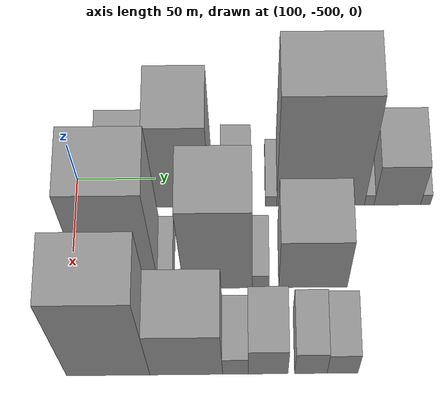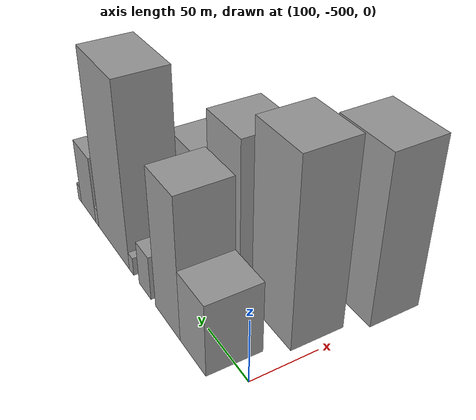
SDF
<sdf version="1.6">
 <world name="default">
  <model name="building_15">
   <static>1</static>
   <pose>100.0000 -466.7707 0 0.000000 0.000000 0.000000</pose>
   <link name="link">
    <pose>0 0 28.50 0 0 0</pose>
    <collision name="collision"><geometry><box><size>40.0000 33.6576 57.0000</size></box></geometry></collision>
    <visual name="visual">
     <cast_shadows>0</cast_shadows>
     <geometry><box><size>40.0000 33.6576 57.0000</size></box></geometry>
     <material>
      <script>
       <uri>model://grey_wall/materials/scripts</uri>
       <uri>model://grey_wall/materials/textures</uri>
       <name>vrc/grey_wall</name>
      </script>
     </material>
    </visual>
   </link>
  </model>
  <model name="building_16">
   <static>1</static>
   <pose>100.0000 -432.0576 0 0.000000 0.000000 0.000000</pose>
   <link name="link">
    <pose>0 0 55.50 0 0 0</pose>
    <collision name="collision"><geometry><box><size>40.0000 35.7686 111.0000</size></box></geometry></collision>
    <visual name="visual">
     <cast_shadows>0</cast_shadows>
     <geometry><box><size>40.0000 35.7686 111.0000</size></box></geometry>
     <material>
      <script>
       <uri>model://grey_wall/materials/scripts</uri>
       <uri>model://grey_wall/materials/textures</uri>
       <name>vrc/grey_wall</name>
      </script>
     </material>
    </visual>
   </link>
  </model>
  <model name="building_17">
   <static>1</static>
   <pose>100.0000 -397.7357 0 0.000000 0.000000 0.000000</pose>
   <link name="link">
    <pose>0 0 18.00 0 0 0</pose>
    <collision name="collision"><geometry><box><size>40.0000 18.8753 36.0000</size></box></geometry></collision>
    <visual name="visual">
     <cast_shadows>0</cast_shadows>
     <geometry><box><size>40.0000 18.8753 36.0000</size></box></geometry>
     <material>
      <script>
       <uri>model://grey_wall/materials/scripts</uri>
       <uri>model://grey_wall/materials/textures</uri>
       <name>vrc/grey_wall</name>
      </script>
     </material>
    </visual>
   </link>
  </model>
  <model name="building_18">
   <static>1</static>
   <pose>100.0000 -375.6506 0 0.000000 0.000000 0.000000</pose>
   <link name="link">
    <pose>0 0 7.50 0 0 0</pose>
    <collision name="collision"><geometry><box><size>40.0000 7.2949 15.0000</size></box></geometry></collision>
    <visual name="visual">
     <cast_shadows>0</cast_shadows>
     <geometry><box><size>40.0000 7.2949 15.0000</size></box></geometry>
     <material>
      <script>
       <uri>model://grey_wall/materials/scripts</uri>
       <uri>model://grey_wall/materials/textures</uri>
       <name>vrc/grey_wall</name>
      </script>
     </material>
    </visual>
   </link>
  </model>
  <model name="building_19">
   <static>1</static>
   <pose>100.0000 -344.0484 0 0.000000 0.000000 0.000000</pose>
   <link name="link">
    <pose>0 0 73.50 0 0 0</pose>
    <collision name="collision"><geometry><box><size>40.0000 55.9094 147.0000</size></box></geometry></collision>
    <visual name="visual">
     <cast_shadows>0</cast_shadows>
     <geometry><box><size>40.0000 55.9094 147.0000</size></box></geometry>
     <material>
      <script>
       <uri>model://grey_wall/materials/scripts</uri>
       <uri>model://grey_wall/materials/textures</uri>
       <name>vrc/grey_wall</name>
      </script>
     </material>
    </visual>
   </link>
  </model>
  <model name="building_20">
   <static>1</static>
   <pose>100.0000 -313.0314 0 0.000000 0.000000 0.000000</pose>
   <link name="link">
    <pose>0 0 7.50 0 0 0</pose>
    <collision name="collision"><geometry><box><size>40.0000 6.1247 15.0000</size></box></geometry></collision>
    <visual name="visual">
     <cast_shadows>0</cast_shadows>
     <geometry><box><size>40.0000 6.1247 15.0000</size></box></geometry>
     <material>
      <script>
       <uri>model://grey_wall/materials/scripts</uri>
       <uri>model://grey_wall/materials/textures</uri>
       <name>vrc/grey_wall</name>
      </script>
     </material>
    </visual>
   </link>
  </model>
  <model name="building_21">
   <static>1</static>
   <pose>100.0000 -295.0973 0 0.000000 0.000000 0.000000</pose>
   <link name="link">
    <pose>0 0 28.50 0 0 0</pose>
    <collision name="collision"><geometry><box><size>40.0000 29.7436 57.0000</size></box></geometry></collision>
    <visual name="visual">
     <cast_shadows>0</cast_shadows>
     <geometry><box><size>40.0000 29.7436 57.0000</size></box></geometry>
     <material>
      <script>
       <uri>model://grey_wall/materials/scripts</uri>
       <uri>model://grey_wall/materials/textures</uri>
       <name>vrc/grey_wall</name>
      </script>
     </material>
    </visual>
   </link>
  </model>
  <model name="building_22">
   <static>1</static>
   <pose>100.0000 -277.1686 0 0.000000 0.000000 0.000000</pose>
   <link name="link">
    <pose>0 0 7.50 0 0 0</pose>
    <collision name="collision"><geometry><box><size>40.0000 6.1137 15.0000</size></box></geometry></collision>
    <visual name="visual">
     <cast_shadows>0</cast_shadows>
     <geometry><box><size>40.0000 6.1137 15.0000</size></box></geometry>
     <material>
      <script>
       <uri>model://grey_wall/materials/scripts</uri>
       <uri>model://grey_wall/materials/textures</uri>
       <name>vrc/grey_wall</name>
      </script>
     </material>
    </visual>
   </link>
  </model>
  <model name="building_67">
   <static>1</static>
   <pose>155.0000 -468.7932 0 0.000000 0.000000 0.000000</pose>
   <link name="link">
    <pose>0 0 72.00 0 0 0</pose>
    <collision name="collision"><geometry><box><size>40.0000 46.3255 144.0000</size></box></geometry></collision>
    <visual name="visual">
     <cast_shadows>0</cast_shadows>
     <geometry><box><size>40.0000 46.3255 144.0000</size></box></geometry>
     <material>
      <script>
       <uri>model://grey_wall/materials/scripts</uri>
       <uri>model://grey_wall/materials/textures</uri>
       <name>vrc/grey_wall</name>
      </script>
     </material>
    </visual>
   </link>
  </model>
  <model name="building_68">
   <static>1</static>
   <pose>155.0000 -441.0066 0 0.000000 0.000000 0.000000</pose>
   <link name="link">
    <pose>0 0 10.50 0 0 0</pose>
    <collision name="collision"><geometry><box><size>40.0000 9.2479 21.0000</size></box></geometry></collision>
    <visual name="visual">
     <cast_shadows>0</cast_shadows>
     <geometry><box><size>40.0000 9.2479 21.0000</size></box></geometry>
     <material>
      <script>
       <uri>model://grey_wall/materials/scripts</uri>
       <uri>model://grey_wall/materials/textures</uri>
       <name>vrc/grey_wall</name>
      </script>
     </material>
    </visual>
   </link>
  </model>
  <model name="building_69">
   <static>1</static>
   <pose>155.0000 -409.1685 0 0.000000 0.000000 0.000000</pose>
   <link name="link">
    <pose>0 0 60.00 0 0 0</pose>
    <collision name="collision"><geometry><box><size>40.0000 42.4283 120.0000</size></box></geometry></collision>
    <visual name="visual">
     <cast_shadows>0</cast_shadows>
     <geometry><box><size>40.0000 42.4283 120.0000</size></box></geometry>
     <material>
      <script>
       <uri>model://grey_wall/materials/scripts</uri>
       <uri>model://grey_wall/materials/textures</uri>
       <name>vrc/grey_wall</name>
      </script>
     </material>
    </visual>
   </link>
  </model>
  <model name="building_70">
   <static>1</static>
   <pose>155.0000 -382.8238 0 0.000000 0.000000 0.000000</pose>
   <link name="link">
    <pose>0 0 10.50 0 0 0</pose>
    <collision name="collision"><geometry><box><size>40.0000 10.2613 21.0000</size></box></geometry></collision>
    <visual name="visual">
     <cast_shadows>0</cast_shadows>
     <geometry><box><size>40.0000 10.2613 21.0000</size></box></geometry>
     <material>
      <script>
       <uri>model://grey_wall/materials/scripts</uri>
       <uri>model://grey_wall/materials/textures</uri>
       <name>vrc/grey_wall</name>
      </script>
     </material>
    </visual>
   </link>
  </model>
  <model name="building_71">
   <static>1</static>
   <pose>155.0000 -350.4230 0 0.000000 0.000000 0.000000</pose>
   <link name="link">
    <pose>0 0 37.50 0 0 0</pose>
    <collision name="collision"><geometry><box><size>40.0000 42.5403 75.0000</size></box></geometry></collision>
    <visual name="visual">
     <cast_shadows>0</cast_shadows>
     <geometry><box><size>40.0000 42.5403 75.0000</size></box></geometry>
     <material>
      <script>
       <uri>model://grey_wall/materials/scripts</uri>
       <uri>model://grey_wall/materials/textures</uri>
       <name>vrc/grey_wall</name>
      </script>
     </material>
    </visual>
   </link>
  </model>
  <model name="building_118">
   <static>1</static>
   <pose>210.0000 -475.3468 0 0.000000 0.000000 0.000000</pose>
   <link name="link">
    <pose>0 0 66.00 0 0 0</pose>
    <collision name="collision"><geometry><box><size>40.0000 50.1679 132.0000</size></box></geometry></collision>
    <visual name="visual">
     <cast_shadows>0</cast_shadows>
     <geometry><box><size>40.0000 50.1679 132.0000</size></box></geometry>
     <material>
      <script>
       <uri>model://grey_wall/materials/scripts</uri>
       <uri>model://grey_wall/materials/textures</uri>
       <name>vrc/grey_wall</name>
      </script>
     </material>
    </visual>
   </link>
  </model>
  <model name="building_119">
   <static>1</static>
   <pose>210.0000 -428.3292 0 0.000000 0.000000 0.000000</pose>
   <link name="link">
    <pose>0 0 37.50 0 0 0</pose>
    <collision name="collision"><geometry><box><size>40.0000 43.8673 75.0000</size></box></geometry></collision>
    <visual name="visual">
     <cast_shadows>0</cast_shadows>
     <geometry><box><size>40.0000 43.8673 75.0000</size></box></geometry>
     <material>
      <script>
       <uri>model://grey_wall/materials/scripts</uri>
       <uri>model://grey_wall/materials/textures</uri>
       <name>vrc/grey_wall</name>
      </script>
     </material>
    </visual>
   </link>
  </model>
  <model name="building_120">
   <static>1</static>
   <pose>210.0000 -398.6652 0 0.000000 0.000000 0.000000</pose>
   <link name="link">
    <pose>0 0 15.00 0 0 0</pose>
    <collision name="collision"><geometry><box><size>40.0000 15.4608 30.0000</size></box></geometry></collision>
    <visual name="visual">
     <cast_shadows>0</cast_shadows>
     <geometry><box><size>40.0000 15.4608 30.0000</size></box></geometry>
     <material>
      <script>
       <uri>model://grey_wall/materials/scripts</uri>
       <uri>model://grey_wall/materials/textures</uri>
       <name>vrc/grey_wall</name>
      </script>
     </material>
    </visual>
   </link>
  </model>
  <model name="building_121">
   <static>1</static>
   <pose>210.0000 -379.0205 0 0.000000 0.000000 0.000000</pose>
   <link name="link">
    <pose>0 0 22.50 0 0 0</pose>
    <collision name="collision"><geometry><box><size>40.0000 23.8286 45.0000</size></box></geometry></collision>
    <visual name="visual">
     <cast_shadows>0</cast_shadows>
     <geometry><box><size>40.0000 23.8286 45.0000</size></box></geometry>
     <material>
      <script>
       <uri>model://grey_wall/materials/scripts</uri>
       <uri>model://grey_wall/materials/textures</uri>
       <name>vrc/grey_wall</name>
      </script>
     </material>
    </visual>
   </link>
  </model>
  <model name="building_122">
   <static>1</static>
   <pose>210.0000 -353.2999 0 0.000000 0.000000 0.000000</pose>
   <link name="link">
    <pose>0 0 19.50 0 0 0</pose>
    <collision name="collision"><geometry><box><size>40.0000 19.6126 39.0000</size></box></geometry></collision>
    <visual name="visual">
     <cast_shadows>0</cast_shadows>
     <geometry><box><size>40.0000 19.6126 39.0000</size></box></geometry>
     <material>
      <script>
       <uri>model://grey_wall/materials/scripts</uri>
       <uri>model://grey_wall/materials/textures</uri>
       <name>vrc/grey_wall</name>
      </script>
     </material>
    </visual>
   </link>
  </model>
  <model name="building_123">
   <static>1</static>
   <pose>210.0000 -334.2022 0 0.000000 0.000000 0.000000</pose>
   <link name="link">
    <pose>0 0 18.00 0 0 0</pose>
    <collision name="collision"><geometry><box><size>40.0000 18.5828 36.0000</size></box></geometry></collision>
    <visual name="visual">
     <cast_shadows>0</cast_shadows>
     <geometry><box><size>40.0000 18.5828 36.0000</size></box></geometry>
     <material>
      <script>
       <uri>model://grey_wall/materials/scripts</uri>
       <uri>model://grey_wall/materials/textures</uri>
       <name>vrc/grey_wall</name>
      </script>
     </material>
    </visual>
   </link>
  </model>
 </world>
</sdf>
